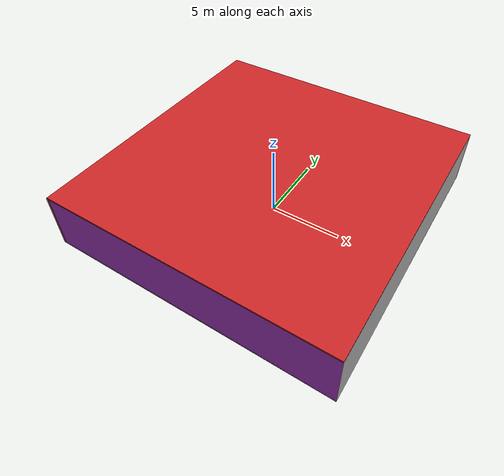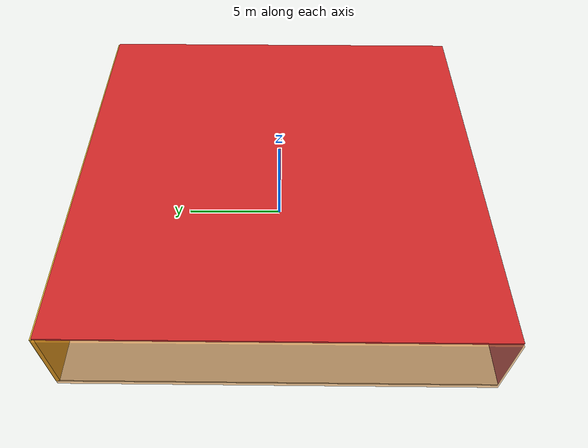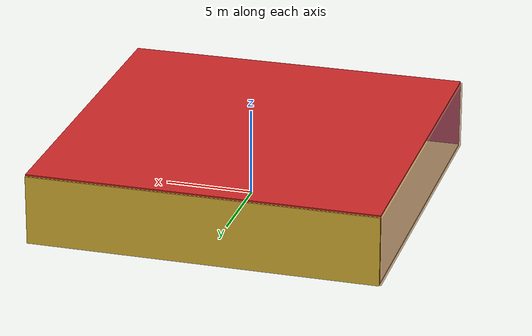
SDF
<sdf version="1.4">
 <world name="default">
  <physics type="ode">
   <max_step_size>0.001</max_step_size>
   <real_time_factor>1</real_time_factor>
   <real_time_update_rate>1000</real_time_update_rate>
   <gravity>0 0 -9.8</gravity>
  </physics>
  <scene><ambient>0.4 0.4 0.4 1</ambient><background>0.7 0.7 0.7 1</background><shadows>1</shadows></scene>
  <model name="Surrounding">
   <static>1</static>
   <link name="Ceiling">
    <collision name="Ceiling_Collision"><geometry><box><size>20 20 0.1</size></box></geometry></collision>
    <visual name="Ceiling_Visual">
     <geometry><box><size>20 20 0.1</size></box></geometry>
     <material>
      <script><uri>file://media/materials/scripts/gazebo.material</uri><name>Gazebo/Red</name></script>
     </material>
    </visual>
    <pose>0 0 4.05 0 0 0</pose>
   </link>
   <link name="Wall_South">
    <collision name="Wall_South_Collision">
     <geometry><box><size>20 0 4</size></box></geometry>
     <pose>0 0 2 0 -0 0</pose>
    </collision>
    <visual name="Wall_South_Visual">
     <pose>0 0 2 0 -0 0</pose>
     <geometry><box><size>20 0 4</size></box></geometry>
     <material>
      <script><uri>file://media/materials/scripts/gazebo.material</uri><name>Gazebo/PurpleGlow</name></script>
     </material>
    </visual>
    <velocity_decay><linear>0</linear><angular>0</angular></velocity_decay>
    <pose>0 -10 0 0 -0 0</pose>
   </link>
   <link name="Wall_East">
    <collision name="Wall_21_Collision">
     <geometry><box><size>20 0 4</size></box></geometry>
     <pose>0 0 2 0 -0 0</pose>
    </collision>
    <visual name="Wall_21_Visual">
     <pose>0 0 2 0 -0 0</pose>
     <geometry><box><size>20 0 4</size></box></geometry>
     <material>
      <script><uri>file://media/materials/scripts/gazebo.material</uri><name>Gazebo/LightOn</name></script>
     </material>
    </visual>
    <velocity_decay><linear>0</linear><angular>0</angular></velocity_decay>
    <pose>10 0 0 0 -0 1.5708</pose>
   </link>
   <link name="Wall_North">
    <collision name="Wall_22_Collision">
     <geometry><box><size>20 0.2 4</size></box></geometry>
     <pose>0 0 2 0 -0 0</pose>
    </collision>
    <visual name="Wall_22_Visual">
     <pose>0 0 2 0 -0 0</pose>
     <geometry><box><size>20 0.2 4</size></box></geometry>
     <material>
      <script><uri>file://media/materials/scripts/gazebo.material</uri><name>Gazebo/Gold</name></script>
     </material>
    </visual>
    <velocity_decay><linear>0</linear><angular>0</angular></velocity_decay>
    <pose>0 10 0 0 -0 0</pose>
   </link>
   <link name="Wall_West">
    <collision name="Wall_23_Collision">
     <geometry><box><size>20 0.2 4</size></box></geometry>
     <pose>0 0 2 0 -0 0</pose>
    </collision>
    <visual name="Wall_23_Visual">
     <pose>0 0 2 0 -0 0</pose>
     <geometry><box><size>20 0.2 4</size></box></geometry>
     <material>
      <script>
       <uri>file://media/materials/scripts/gazebo.material</uri>
       <name>Gazebo/OrangeTransparent</name>
      </script>
     </material>
    </visual>
    <velocity_decay><linear>0</linear><angular>0</angular></velocity_decay>
    <pose>-10 0 0 0 0 -1.5708</pose>
   </link>
   <link name="Ground_link">
    <collision name="collision">
     <pose>0 0 .05 0 -0 0</pose>
     <geometry><box><size>20 20 0.1</size></box></geometry>
    </collision>
    <visual name="visual">
     <pose>0 0 .05 0 -0 0</pose>
     <geometry><box><size>20 20 0.1</size></box></geometry>
     <material>
      <script><uri>file://media/materials/scripts/gazebo.material</uri><name>Gazebo/Pioneer2Body</name></script>
     </material>
    </visual>
   </link>
   <static>1</static>
  </model>
  <spherical_coordinates>
   <surface_model>EARTH_WGS84</surface_model>
   <latitude_deg>0</latitude_deg>
   <longitude_deg>0</longitude_deg>
   <elevation>0</elevation>
   <heading_deg>0</heading_deg>
  </spherical_coordinates>
  <light name="lightball_0" type="diffuse">
   <diffuse>0.8 0.8 0.8 1</diffuse>
   <specular>0.2 0.2 0.2 1</specular>
   <attenuation>
    <range>100</range>
    <constant>0.7</constant>
    <linear>0.01</linear>
    <quadratic>0.001</quadratic>
   </attenuation>
   <direction>-0.5 0.1 -0.9</direction>
   <pose>2.30384632167 -1.55635364137 3.74108247885 0 0 0</pose>
  </light>
  <light name="lightball_1" type="diffuse">
   <diffuse>0.8 0.8 0.8 1</diffuse>
   <specular>0.2 0.2 0.2 1</specular>
   <attenuation>
    <range>100</range>
    <constant>0.7</constant>
    <linear>0.01</linear>
    <quadratic>0.001</quadratic>
   </attenuation>
   <direction>-0.5 0.1 -0.9</direction>
   <pose>9.31311846494 -0.775451216941 3.32667508199 0 0 0</pose>
  </light>
  <light name="lightball_2" type="diffuse">
   <diffuse>0.8 0.8 0.8 1</diffuse>
   <specular>0.2 0.2 0.2 1</specular>
   <attenuation>
    <range>100</range>
    <constant>0.7</constant>
    <linear>0.01</linear>
    <quadratic>0.001</quadratic>
   </attenuation>
   <direction>-0.5 0.1 -0.9</direction>
   <pose>6.14956535568 -1.32637756477 1.47514204247 0 0 0</pose>
  </light>
  <light name="lightball_3" type="diffuse">
   <diffuse>0.8 0.8 0.8 1</diffuse>
   <specular>0.2 0.2 0.2 1</specular>
   <attenuation>
    <range>100</range>
    <constant>0.7</constant>
    <linear>0.01</linear>
    <quadratic>0.001</quadratic>
   </attenuation>
   <direction>-0.5 0.1 -0.9</direction>
   <pose>3.77513106752 0.123678387204 2.45979778347 0 0 0</pose>
  </light>
  <light name="lightball_4" type="diffuse">
   <diffuse>0.8 0.8 0.8 1</diffuse>
   <specular>0.2 0.2 0.2 1</specular>
   <attenuation>
    <range>100</range>
    <constant>0.7</constant>
    <linear>0.01</linear>
    <quadratic>0.001</quadratic>
   </attenuation>
   <direction>-0.5 0.1 -0.9</direction>
   <pose>-8.71361751217 4.52584135911 3.28611821403 0 0 0</pose>
  </light>
  <light name="lightball_5" type="diffuse">
   <diffuse>0.8 0.8 0.8 1</diffuse>
   <specular>0.2 0.2 0.2 1</specular>
   <attenuation>
    <range>100</range>
    <constant>0.7</constant>
    <linear>0.01</linear>
    <quadratic>0.001</quadratic>
   </attenuation>
   <direction>-0.5 0.1 -0.9</direction>
   <pose>-6.34921176342 -7.97808570505 2.94395771745 0 0 0</pose>
  </light>
  <light name="lightball_6" type="diffuse">
   <diffuse>0.8 0.8 0.8 1</diffuse>
   <specular>0.2 0.2 0.2 1</specular>
   <attenuation>
    <range>100</range>
    <constant>0.7</constant>
    <linear>0.01</linear>
    <quadratic>0.001</quadratic>
   </attenuation>
   <direction>-0.5 0.1 -0.9</direction>
   <pose>6.32150851626 -9.35478703752 2.30260337374 0 0 0</pose>
  </light>
  <light name="lightball_7" type="diffuse">
   <diffuse>0.8 0.8 0.8 1</diffuse>
   <specular>0.2 0.2 0.2 1</specular>
   <attenuation>
    <range>100</range>
    <constant>0.7</constant>
    <linear>0.01</linear>
    <quadratic>0.001</quadratic>
   </attenuation>
   <direction>-0.5 0.1 -0.9</direction>
   <pose>-7.04285746217 -5.87187794469 1.43865849562 0 0 0</pose>
  </light>
  <light name="lightball_8" type="diffuse">
   <diffuse>0.8 0.8 0.8 1</diffuse>
   <specular>0.2 0.2 0.2 1</specular>
   <attenuation>
    <range>100</range>
    <constant>0.7</constant>
    <linear>0.01</linear>
    <quadratic>0.001</quadratic>
   </attenuation>
   <direction>-0.5 0.1 -0.9</direction>
   <pose>-4.64699343684 -6.47912161888 2.7289731578 0 0 0</pose>
  </light>
  <light name="lightball_9" type="diffuse">
   <diffuse>0.8 0.8 0.8 1</diffuse>
   <specular>0.2 0.2 0.2 1</specular>
   <attenuation>
    <range>100</range>
    <constant>0.7</constant>
    <linear>0.01</linear>
    <quadratic>0.001</quadratic>
   </attenuation>
   <direction>-0.5 0.1 -0.9</direction>
   <pose>-2.59608372992 6.64866236661 2.23221133385 0 0 0</pose>
  </light>
  <include><uri>model://table</uri><pose>-3.85246958386 -3.81341147516 0 0 0 1.45397433978</pose></include>
  <include><uri>model://table</uri><pose>-4.2381197225 -0.909101395589 0 0 0 3.01763824174</pose></include>
  <include>
   <uri>model://robocup_3Dsim_goal</uri>
   <pose>1.36023101952 4.35122358666 0 0 0 1.65020586871</pose>
  </include>
  <include><uri>model://table</uri><pose>1.66897372076 7.47493130741 0 0 0 0.319312733737</pose></include>
  <include><uri>model://cabinet</uri><pose>4.46009389459 -1.99035978702 0 0 0 0.493655694805</pose></include>
  <include><uri>model://table</uri><pose>8.1137872185 -5.01568358996 0 0 0 0.373590669715</pose></include>
 </world>
</sdf>

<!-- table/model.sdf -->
<sdf version="1.5">
  <model name="table">
    <static>true</static>
    <link name="link">
      <collision name="surface">
        <pose>0 0 1.0 0 0 0</pose>
        <geometry>
          <box>
            <size>1.5 0.8 0.03</size>
          </box>
        </geometry>
        <surface>
          <friction>
            <ode>
              <mu>0.6</mu>
              <mu2>0.6</mu2>
            </ode>
          </friction>
        </surface>
      </collision>
      <visual name="visual1">
        <pose>0 0 1.0 0 0 0</pose>
        <geometry>
          <box>
            <size>1.5 0.8 0.03</size>
          </box>
        </geometry>
        <material>
          <script>
            <uri>model://media/materials/scripts/gazebo.material</uri>
            <name>Gazebo/Wood</name>
          </script>
        </material>
      </visual>
      <collision name="front_left_leg">
        <pose>0.68 0.38 0.5 0 0 0</pose>
        <geometry>
          <cylinder>
            <radius>0.02</radius>
            <length>1.0</length>
          </cylinder>
        </geometry>
      </collision>
      <visual name="front_left_leg">
        <pose>0.68 0.38 0.5 0 0 0</pose>
        <geometry>
          <cylinder>
            <radius>0.02</radius>
            <length>1.0</length>
          </cylinder>
        </geometry>
        <material>
          <script>
            <uri>model://media/materials/scripts/gazebo.material</uri>
            <name>Gazebo/Grey</name>
          </script>
        </material>
      </visual>
      <collision name="front_right_leg">
        <pose>0.68 -0.38 0.5 0 0 0</pose>
        <geometry>
          <cylinder>
            <radius>0.02</radius>
            <length>1.0</length>
          </cylinder>
        </geometry>
      </collision>
      <visual name="front_right_leg">
        <pose>0.68 -0.38 0.5 0 0 0</pose>
        <geometry>
          <cylinder>
            <radius>0.02</radius>
            <length>1.0</length>
          </cylinder>
        </geometry>
        <material>
          <script>
            <uri>model://media/materials/scripts/gazebo.material</uri>
            <name>Gazebo/Grey</name>
          </script>
        </material>
      </visual>
      <collision name="back_right_leg">
        <pose>-0.68 -0.38 0.5 0 0 0</pose>
        <geometry>
          <cylinder>
            <radius>0.02</radius>
            <length>1.0</length>
          </cylinder>
        </geometry>
      </collision>
      <visual name="back_right_leg">
        <pose>-0.68 -0.38 0.5 0 0 0</pose>
        <geometry>
          <cylinder>
            <radius>0.02</radius>
            <length>1.0</length>
          </cylinder>
        </geometry>
        <material>
          <script>
            <uri>model://media/materials/scripts/gazebo.material</uri>
            <name>Gazebo/Grey</name>
          </script>
        </material>
      </visual>
      <collision name="back_left_leg">
        <pose>-0.68 0.38 0.5 0 0 0</pose>
        <geometry>
          <cylinder>
            <radius>0.02</radius>
            <length>1.0</length>
          </cylinder>
        </geometry>
      </collision>
      <visual name="back_left_leg">
        <pose>-0.68 0.38 0.5 0 0 0</pose>
        <geometry>
          <cylinder>
            <radius>0.02</radius>
            <length>1.0</length>
          </cylinder>
        </geometry>
        <material>
          <script>
            <uri>model://media/materials/scripts/gazebo.material</uri>
            <name>Gazebo/Grey</name>
          </script>
        </material>
      </visual>
    </link>
  </model>
</sdf>

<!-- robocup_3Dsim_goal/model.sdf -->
<sdf version="1.5">
  <model name="robocup_3d_goal">
    <static>true</static>
    <link name="left_post">
      <pose>0 1.05 0.45 0 0 0</pose>
      <collision name="collision">
        <geometry>
          <cylinder>
            <radius>0.05</radius>
            <length>0.9</length>
          </cylinder>
        </geometry>
      </collision>
      <visual name="visual">
        <geometry>
          <cylinder>
            <radius>0.05</radius>
            <length>0.9</length>
          </cylinder>
        </geometry>
        <material>
          <script>
            <uri>file://media/materials/scripts/gazebo.material</uri>
            <name>Gazebo/ZincYellow</name>
          </script>
        </material>
      </visual>
    </link>
    <link name="left_support_horiz_lower">
      <pose>0.30 1.05 0.01 0 0 0</pose>
      <collision name="collision">
        <geometry>
          <box>
            <size>0.50 0.02 0.02</size>
          </box>
        </geometry>
      </collision>
      <visual name="visual">
        <geometry>
          <box>
            <size>0.50 0.02 0.02</size>
          </box>
        </geometry>
        <material>
          <script>
            <uri>file://media/materials/scripts/gazebo.material</uri>
            <name>Gazebo/White</name>
          </script>
        </material>
      </visual>
    </link>
    <link name="left_support_horiz_upper">
      <pose>0.30 1.05 0.79 0 0 0</pose>
      <collision name="collision">
        <geometry>
          <box>
            <size>0.50 0.02 0.02</size>
          </box>
        </geometry>
      </collision>
      <visual name="visual">
        <geometry>
          <box>
            <size>0.50 0.02 0.02</size>
          </box>
        </geometry>
        <material>
          <script>
            <uri>file://media/materials/scripts/gazebo.material</uri>
            <name>Gazebo/White</name>
          </script>
        </material>
      </visual>
    </link>
    <link name="left_support_vertical">
      <pose>0.56 1.05 0.4 0 1.5708 0</pose>
      <collision name="collision">
        <geometry>
          <box>
            <size>0.80 0.02 0.02</size>
          </box>
        </geometry>
      </collision>
      <visual name="visual">
        <geometry>
          <box>
            <size>0.80 0.02 0.02</size>
          </box>
        </geometry>
        <material>
          <script>
            <uri>file://media/materials/scripts/gazebo.material</uri>
            <name>Gazebo/White</name>
          </script>
        </material>
      </visual>
    </link>
    <link name="right_support_horiz_lower">
      <pose>0.30 -1.05 0.01 0 0 0</pose>
      <collision name="collision">
        <geometry>
          <box>
            <size>0.50 0.02 0.02</size>
          </box>
        </geometry>
      </collision>
      <visual name="visual">
        <geometry>
          <box>
            <size>0.50 0.02 0.02</size>
          </box>
        </geometry>
        <material>
          <script>
            <uri>file://media/materials/scripts/gazebo.material</uri>
            <name>Gazebo/White</name>
          </script>
        </material>
      </visual>
    </link>
    <link name="right_support_horiz_upper">
      <pose>0.30 -1.05 0.79 0 0 0</pose>
      <collision name="collision">
        <geometry>
          <box>
            <size>0.50 0.02 0.02</size>
          </box>
        </geometry>
      </collision>
      <visual name="visual">
        <geometry>
          <box>
            <size>0.50 0.02 0.02</size>
          </box>
        </geometry>
        <material>
          <script>
            <uri>file://media/materials/scripts/gazebo.material</uri>
            <name>Gazebo/White</name>
          </script>
        </material>
      </visual>
    </link>
    <link name="right_support_vertical">
      <pose>0.56 -1.05 0.4 0 1.5708 0</pose>
      <collision name="collision">
        <geometry>
          <box>
            <size>0.80 0.02 0.02</size>
          </box>
        </geometry>
      </collision>
      <visual name="visual">
        <geometry>
          <box>
            <size>0.80 0.02 0.02</size>
          </box>
        </geometry>
        <material>
          <script>
            <uri>file://media/materials/scripts/gazebo.material</uri>
            <name>Gazebo/White</name>
          </script>
        </material>
      </visual>
    </link>
    <link name="center_support_horiz_lower">
      <pose>0.56 0 0.01 0 1.5708 0</pose>
      <collision name="collision">
        <geometry>
          <box>
            <size>0.02 2.08 0.02</size>
          </box>
        </geometry>
      </collision>
      <visual name="visual">
        <geometry>
          <box>
            <size>0.02 2.08 0.02</size>
          </box>
        </geometry>
        <material>
          <script>
            <uri>file://media/materials/scripts/gazebo.material</uri>
            <name>Gazebo/White</name>
          </script>
        </material>
      </visual>
    </link>
    <link name="center_support_horiz_upper">
      <pose>0.56 0 0.79 0 1.5708 0</pose>
      <collision name="collision">
        <geometry>
          <box>
            <size>0.02 2.08 0.02</size>
          </box>
        </geometry>
      </collision>
      <visual name="visual">
        <geometry>
          <box>
            <size>0.02 2.08 0.02</size>
          </box>
        </geometry>
        <material>
          <script>
            <uri>file://media/materials/scripts/gazebo.material</uri>
            <name>Gazebo/White</name>
          </script>
        </material>
      </visual>
    </link>
    <link name="right_post">
      <pose>0 -1.05 0.45 0 0 0</pose>
      <collision name="collision">
        <geometry>
          <cylinder>
            <radius>0.05</radius>
            <length>0.9</length>
          </cylinder>
        </geometry>
      </collision>
      <visual name="visual">
        <geometry>
          <cylinder>
            <radius>0.05</radius>
            <length>0.9</length>
          </cylinder>
        </geometry>
        <material>
          <script>
            <uri>file://media/materials/scripts/gazebo.material</uri>
            <name>Gazebo/ZincYellow</name>
          </script>
        </material>
      </visual>
    </link>
    <link name="crossbar">
      <pose>0 0 0.85 1.57 1.57 0</pose>
      <collision name="collision">
        <geometry>
          <cylinder>
            <radius>0.05</radius>
            <length>2.0</length>
          </cylinder>
        </geometry>
      </collision>
      <visual name="visual">
        <geometry>
          <cylinder>
            <radius>0.05</radius>
            <length>2.0</length>
          </cylinder>
        </geometry>
        <material>
          <script>
            <uri>file://media/materials/scripts/gazebo.material</uri>
            <name>Gazebo/ZincYellow</name>
          </script>
        </material>
      </visual>
    </link>
    <link name="center_net">
      <pose>0.56 0 0.40 0 0 0</pose>
      <collision name="collision">
        <geometry>
          <box>
            <size>0.01 2.1 0.80</size>
          </box>
        </geometry>
      </collision>
      <visual name="visual">
        <geometry>
          <box>
            <size>0.01 2.1 0.80</size>
          </box>
        </geometry>
        <material>
          <script>
            <uri>model://../model_source/models/robocup09_spl_field/materials/scripts/</uri>
            <uri>model://../model_source/models/robocup09_spl_field/materials/textures/</uri>
            <name>RoboCup/Net</name>
          </script>
        </material>
      </visual>
    </link>
    <link name="left_net">
      <pose>0.30 1.05 0.40 0 0 0</pose>
      <collision name="collision">
        <geometry>
          <box>
            <size>0.50 0.01 0.76</size>
          </box>
        </geometry>
      </collision>
      <visual name="visual">
        <geometry>
          <box>
            <size>0.50 0.01 0.76</size>
          </box>
        </geometry>
        <material>
          <script>
            <uri>model://../model_source/models/robocup09_spl_field/materials/scripts/</uri>
            <uri>model://../model_source/models/robocup09_spl_field/materials/textures/</uri>
            <name>RoboCup/Net</name>
          </script>
        </material>
      </visual>
    </link>
    <link name="right_net">
      <pose>0.30 -1.05 0.40 0 0 0</pose>
      <collision name="collision">
        <geometry>
          <box>
            <size>0.50 0.01 0.76</size>
          </box>
        </geometry>
      </collision>
      <visual name="visual">
        <geometry>
          <box>
            <size>0.50 0.01 0.76</size>
          </box>
        </geometry>
        <material>
          <script>
            <uri>model://../model_source/models/robocup09_spl_field/materials/scripts/</uri>
            <uri>model://../model_source/models/robocup09_spl_field/materials/textures/</uri>
            <name>RoboCup/Net</name>
          </script>
        </material>
      </visual>
    </link>
  </model>
</sdf>

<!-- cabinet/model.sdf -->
<sdf version="1.5">
  <model name="cabinet">
    <static>true</static>
    <link name="cabinet_bottom_plate">
      <inertial>
        <pose>0 0 -1 0 0 0</pose>
        <inertia>
          <ixx>2.050000</ixx>
          <ixy>0</ixy>
          <ixz>0</ixz>
          <iyy>2.050000</iyy>
          <iyz>0</iyz>
          <izz>2.050000</izz>
        </inertia>
        <mass>25.000000</mass>
      </inertial>
      <collision name="cabinet_bottom_plate_geom">
        <pose>0 0 0.010000 0 0 0</pose>
        <geometry>
          <box>
            <size>0.450000 0.450000 0.020000</size>
          </box>
        </geometry>
      </collision>
      <visual name="cabinet_bottom_plate_geom_visual">
        <pose>0 0 0.010000 0 0 0</pose>
        <geometry>
          <box>
            <size>0.450000 0.450000 0.020000</size>
          </box>
        </geometry>
        <material>
          <script>
            <uri>model://media/materials/scripts/gazebo.material</uri>
            <name>Gazebo/Wood</name>
          </script>
        </material>
      </visual>
      <collision name="cabinet_bottom_plate_geom_cabinet_back_plate">
        <pose>0.235000 0 0.510000 0 0 0</pose>
        <geometry>
          <box>
            <size>0.020000 0.450000 1.020000</size>
          </box>
        </geometry>
      </collision>
      <visual name="cabinet_bottom_plate_geom_cabinet_back_plate_visual">
        <pose>0.235000 0 0.510000 0 0 0</pose>
        <geometry>
          <box>
            <size>0.020000 0.450000 1.020000</size>
          </box>
        </geometry>
        <material>
          <script>
            <uri>model://media/materials/scripts/gazebo.material</uri>
            <name>Gazebo/Wood</name>
          </script>
        </material>
      </visual>
      <collision name="cabinet_bottom_plate_geom_cabinet_left_plate">
        <pose>0 0.235000 0.510000 0 0 0</pose>
        <geometry>
          <box>
            <size>0.450000 0.020000 1.020000</size>
          </box>
        </geometry>
      </collision>
      <visual name="cabinet_bottom_plate_geom_cabinet_left_plate_visual">
        <pose>0 0.235000 0.510000 0 0 0</pose>
        <geometry>
          <box>
            <size>0.450000 0.020000 1.020000</size>
          </box>
        </geometry>
        <material>
          <script>
            <uri>model://media/materials/scripts/gazebo.material</uri>
            <name>Gazebo/Wood</name>
          </script>
        </material>
      </visual>
      <collision name="cabinet_bottom_plate_geom_cabinet_middle_plate">
        <pose>0 0 0.510000 0 0 0</pose>
        <geometry>
          <box>
            <size>0.450000 0.450000 0.020000</size>
          </box>
        </geometry>
      </collision>
      <visual name="cabinet_bottom_plate_geom_cabinet_middle_plate_visual">
        <pose>0 0 0.510000 0 0 0</pose>
        <geometry>
          <box>
            <size>0.450000 0.450000 0.020000</size>
          </box>
        </geometry>
        <material>
          <script>
            <uri>model://media/materials/scripts/gazebo.material</uri>
            <name>Gazebo/Wood</name>
          </script>
        </material>
      </visual>
      <collision name="cabinet_bottom_plate_geom_cabinet_right_plate">
        <pose>0 -0.235000 0.510000 0 0 0</pose>
        <geometry>
          <box>
            <size>0.450000 0.020000 1.020000</size>
          </box>
        </geometry>
      </collision>
      <visual name="cabinet_bottom_plate_geom_cabinet_right_plate_visual">
        <pose>0 -0.235000 0.510000 0 0 0</pose>
        <geometry>
          <box>
            <size>0.450000 0.020000 1.020000</size>
          </box>
        </geometry>
        <material>
          <script>
            <uri>model://media/materials/scripts/gazebo.material</uri>
            <name>Gazebo/Wood</name>
          </script>
        </material>
      </visual>
      <collision name="cabinet_bottom_plate_geom_cabinet_top_plate">
        <pose>0 0 1.010000 0 0 0</pose>
        <geometry>
          <box>
            <size>0.450000 0.450000 0.020000</size>
          </box>
        </geometry>
      </collision>
      <visual name="cabinet_bottom_plate_geom_cabinet_top_plate_visual">
        <pose>0 0 1.010000 0 0 0</pose>
        <geometry>
          <box>
            <size>0.450000 0.450000 0.020000</size>
          </box>
        </geometry>
        <material>
          <script>
            <uri>model://media/materials/scripts/gazebo.material</uri>
            <name>Gazebo/Wood</name>
          </script>
        </material>
      </visual>
    </link>
  </model>
</sdf>
